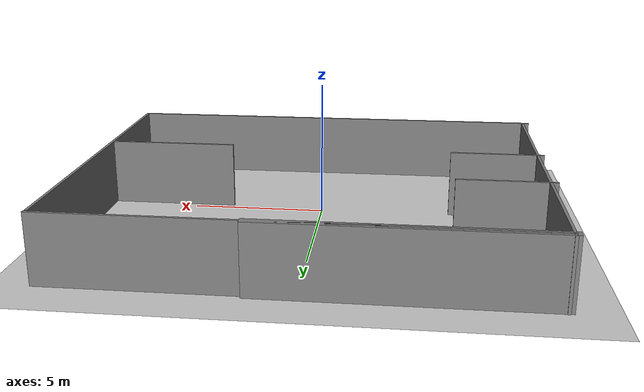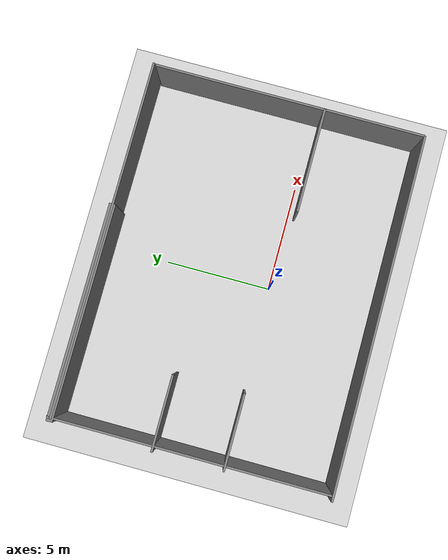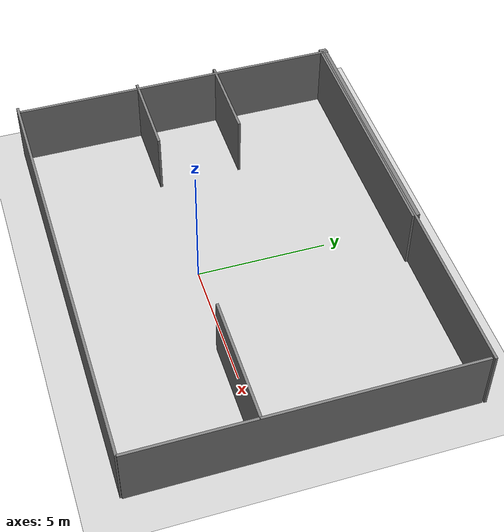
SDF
<sdf version="1.7">
 <world name="default">
  <light name="sun" type="directional">
   <pose>0 0 10 0 -0 0</pose>
   <diffuse>0.8 0.8 0.8 1</diffuse>
   <specular>0.2 0.2 0.2 1</specular>
   <attenuation>
    <range>1000</range>
    <constant>0.9</constant>
    <linear>0.01</linear>
    <quadratic>0.001</quadratic>
   </attenuation>
   <direction>-0.5 0.1 -0.9</direction>
   <spot><inner_angle>0</inner_angle><outer_angle>0</outer_angle><falloff>0</falloff></spot>
  </light>
  <model name="ground_plane">
   <static>1</static>
   <link name="link">
    <collision name="collision">
     <geometry><plane><normal>0 0 1</normal><size>100 100</size></plane></geometry>
     <surface>
      <contact><collide_bitmask>65535</collide_bitmask></contact>
      <friction><ode><mu>100</mu><mu2>50</mu2></ode></friction>
     </surface>
    </collision>
    <visual name="visual">
     <cast_shadows>0</cast_shadows>
     <geometry><plane><normal>0 0 1</normal><size>100 100</size></plane></geometry>
     <material>
      <script><uri>file://media/materials/scripts/gazebo.material</uri><name>Gazebo/Grey</name></script>
     </material>
    </visual>
   </link>
  </model>
  <model name="wall_north">
   <static>1</static>
   <link name="link">
    <collision name="collision"><geometry><box><size>16.6523 0.1 2.5</size></box></geometry></collision>
    <visual name="visual">
     <geometry><box><size>16.6523 0.1 2.5</size></box></geometry>
     <material><ambient>0.5 0.5 0.5 1</ambient><diffuse>0.5 0.5 0.5 1</diffuse></material>
    </visual>
   </link>
   <pose>0.136627 7.79214 1.25 0 -0 0</pose>
  </model>
  <model name="wall_south">
   <static>1</static>
   <link name="link">
    <collision name="collision"><geometry><box><size>16.7853 0.1 2.5</size></box></geometry></collision>
    <visual name="visual">
     <geometry><box><size>16.7853 0.1 2.5</size></box></geometry>
     <material><ambient>0.5 0.5 0.5 1</ambient><diffuse>0.5 0.5 0.5 1</diffuse></material>
    </visual>
   </link>
   <pose>0 -5 1.25 0 -0 0</pose>
  </model>
  <model name="wall_east">
   <static>1</static>
   <link name="link">
    <collision name="collision"><geometry><box><size>0.1 12.67 2.5</size></box></geometry></collision>
    <visual name="visual">
     <geometry><box><size>0.1 12.67 2.5</size></box></geometry>
     <material><ambient>0.5 0.5 0.5 1</ambient><diffuse>0.5 0.5 0.5 1</diffuse></material>
    </visual>
   </link>
   <pose>8.39152 1.34744 1.25 0 -0 0</pose>
  </model>
  <model name="wall_west">
   <static>1</static>
   <link name="link">
    <collision name="collision"><geometry><box><size>0.1 12.9227 2.5</size></box></geometry></collision>
    <visual name="visual">
     <geometry><box><size>0.1 12.9227 2.5</size></box></geometry>
     <material><ambient>0.5 0.5 0.5 1</ambient><diffuse>0.5 0.5 0.5 1</diffuse></material>
    </visual>
   </link>
   <pose>-8.13207 1.51973 1.25 0 -0 0</pose>
  </model>
  <gravity>0 0 -9.8</gravity>
  <magnetic_field>6e-06 2.3e-05 -4.2e-05</magnetic_field>
  <atmosphere type="adiabatic"/>
  <physics type="ode">
   <max_step_size>0.001</max_step_size>
   <real_time_factor>1</real_time_factor>
   <real_time_update_rate>1000</real_time_update_rate>
  </physics>
  <scene><ambient>0.4 0.4 0.4 1</ambient><background>0.7 0.7 0.7 1</background><shadows>1</shadows></scene>
  <spherical_coordinates>
   <surface_model>EARTH_WGS84</surface_model>
   <latitude_deg>0</latitude_deg>
   <longitude_deg>0</longitude_deg>
   <elevation>0</elevation>
   <heading_deg>0</heading_deg>
  </spherical_coordinates>
  <model name="wall_north_clone">
   <static>1</static>
   <link name="link">
    <collision name="collision"><geometry><box><size>9.99997 0.306596 2.5</size></box></geometry></collision>
    <visual name="visual">
     <geometry><box><size>9.99997 0.306596 2.5</size></box></geometry>
     <material><ambient>0.5 0.5 0.5 1</ambient><diffuse>0.5 0.5 0.5 1</diffuse></material>
    </visual>
   </link>
   <pose>-3.30624 7.80544 1.25 0 -0 0</pose>
  </model>
  <model name="wall_north_clone_clone">
   <static>1</static>
   <link name="link">
    <collision name="collision"><geometry><box><size>4.89055 0.1 2.5</size></box></geometry></collision>
    <visual name="visual">
     <geometry><box><size>4.89055 0.1 2.5</size></box></geometry>
     <material><ambient>0.5 0.5 0.5 1</ambient><diffuse>0.5 0.5 0.5 1</diffuse></material>
    </visual>
   </link>
   <pose>5.97732 -0.303651 1.25 0 -0 0</pose>
  </model>
  <model name="wall_north_clone_clone_clone">
   <static>1</static>
   <link name="link">
    <collision name="collision"><geometry><box><size>3.48088 0.1 2.5</size></box></geometry></collision>
    <visual name="visual">
     <geometry><box><size>3.48088 0.1 2.5</size></box></geometry>
     <material><ambient>0.5 0.5 0.5 1</ambient><diffuse>0.5 0.5 0.5 1</diffuse></material>
    </visual>
   </link>
   <pose>-6.63621 -0.129041 1.25 0 -0 0</pose>
  </model>
  <model name="wall_north_clone_clone_clone_clone">
   <static>1</static>
   <link name="link">
    <collision name="collision"><geometry><box><size>3.48088 0.1 2.5</size></box></geometry></collision>
    <visual name="visual">
     <geometry><box><size>3.48088 0.1 2.5</size></box></geometry>
     <material><ambient>0.5 0.5 0.5 1</ambient><diffuse>0.5 0.5 0.5 1</diffuse></material>
    </visual>
   </link>
   <pose>-6.66033 3.12512 1.25 0 -0 0</pose>
  </model>
 </world>
</sdf>
